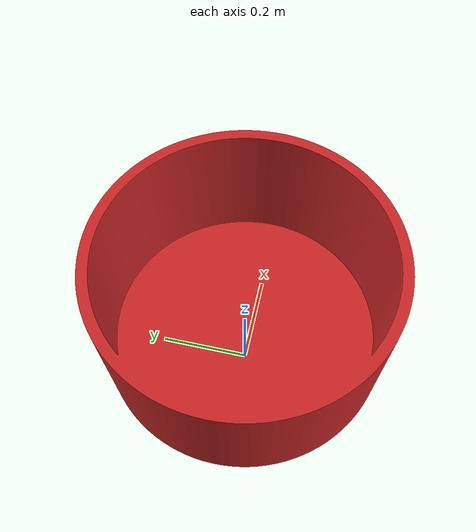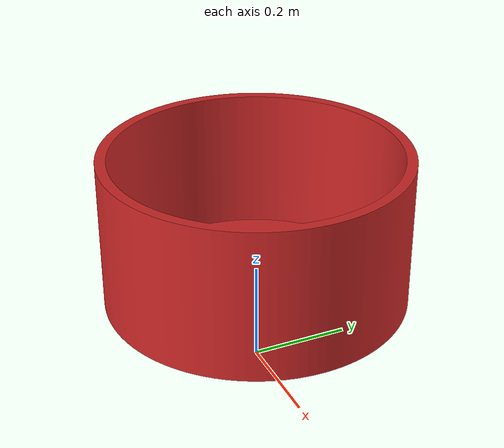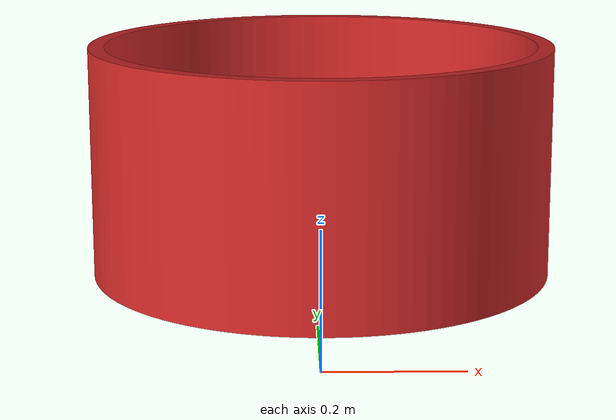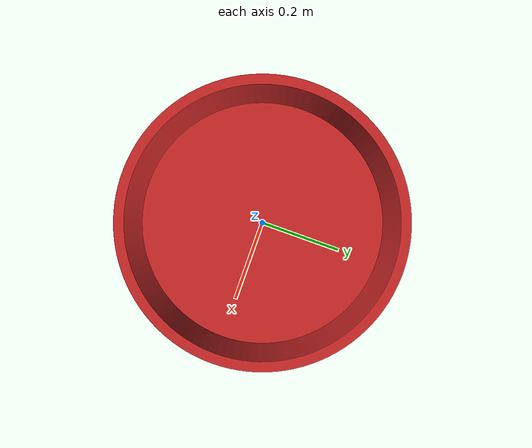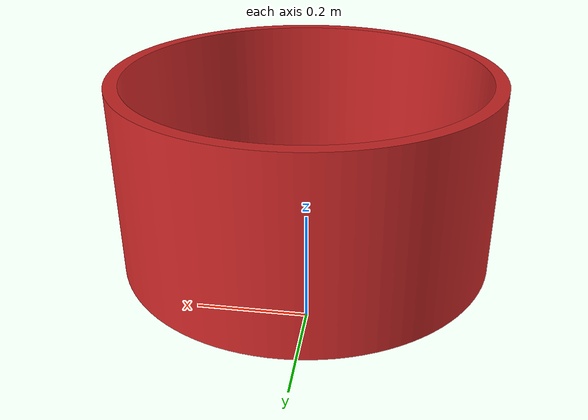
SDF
<?xml version="1.0"?>

<sdf version="1.5">
  <model name="red_drum">
    <static>true</static>
    <link name="link">

      <collision name="drum">
        <pose>0 0 0.15 0 0 0</pose>
        <geometry>
          <mesh>
            <scale>0.001 0.001 0.001</scale>
            <uri>model://red_drum/bucket.stl</uri>
          </mesh>
        </geometry>
      </collision>

      <visual name="drum">
        <cast_shadows>false</cast_shadows>
        <pose>0 0 0.15 0 0 0</pose>
        <geometry>
          <mesh>
            <scale>0.001 0.001 0.001</scale>
            <uri>model://red_drum/bucket.stl</uri>
          </mesh>
          <scale>0.001 0.001 0.001</scale>
        </geometry>
        <material>
          <script>
            <uri>file://media/materials/scripts/colors.material</uri>
            <name>SAUVC/Red</name>
          </script>
        </material>
      </visual>

    </link>
  </model>
</sdf>
